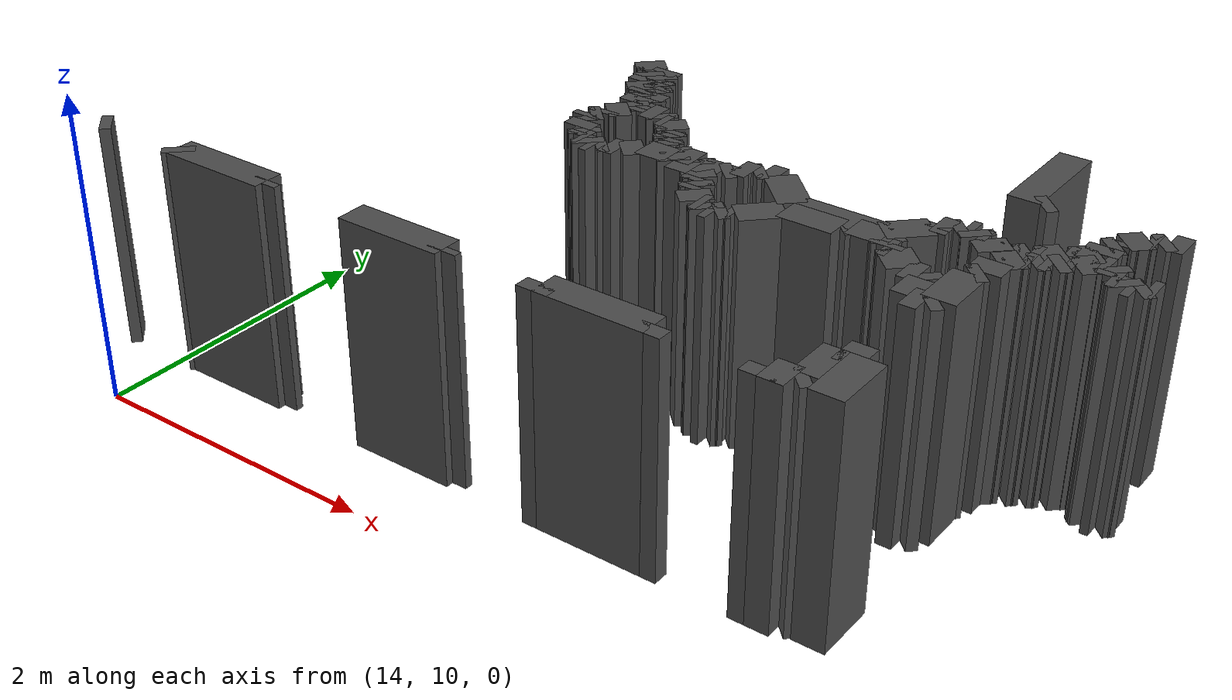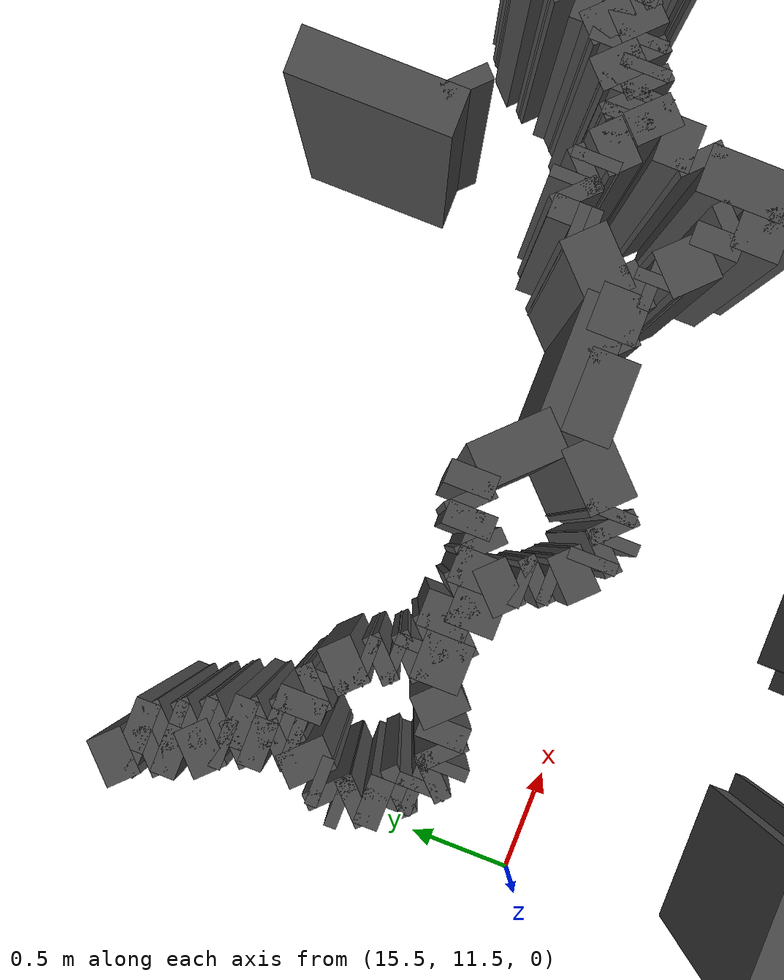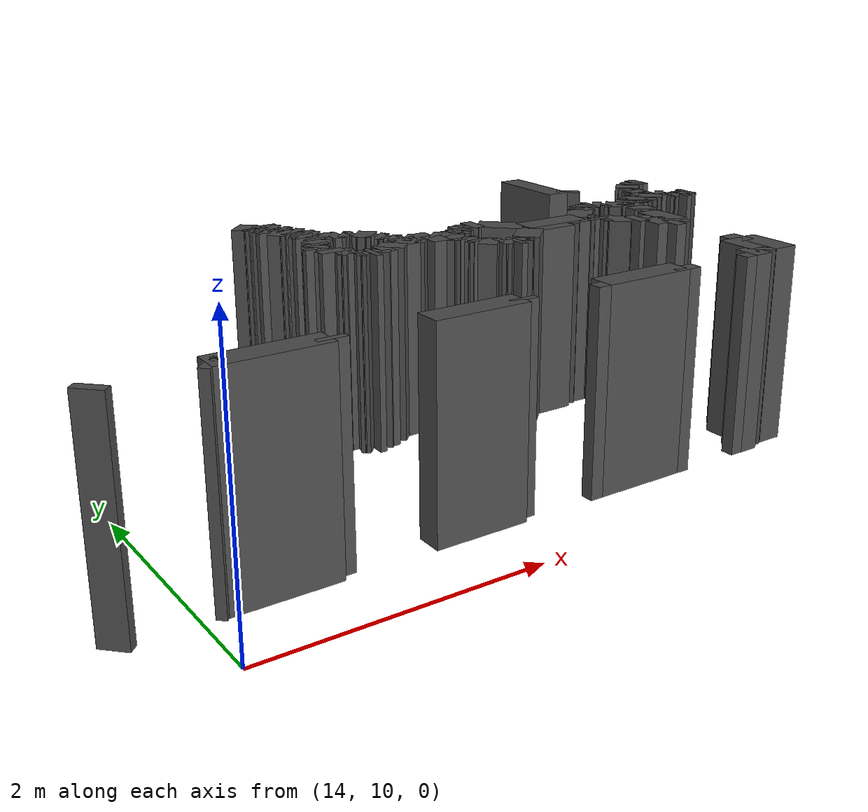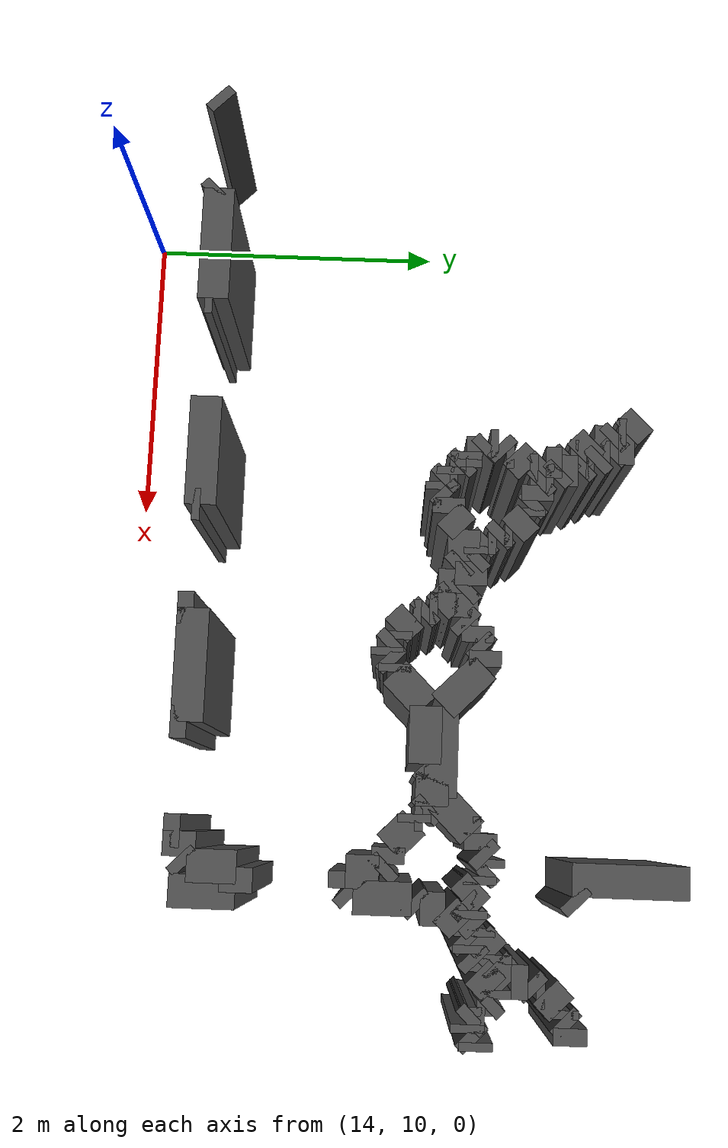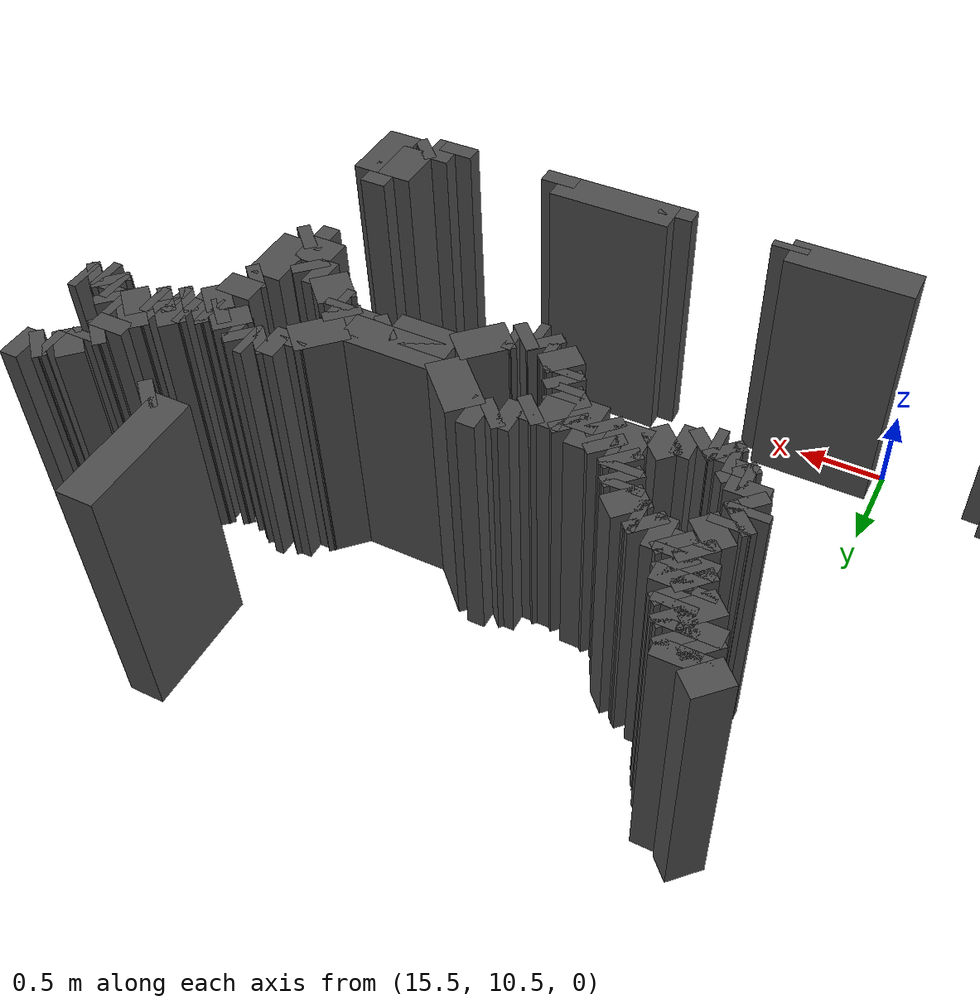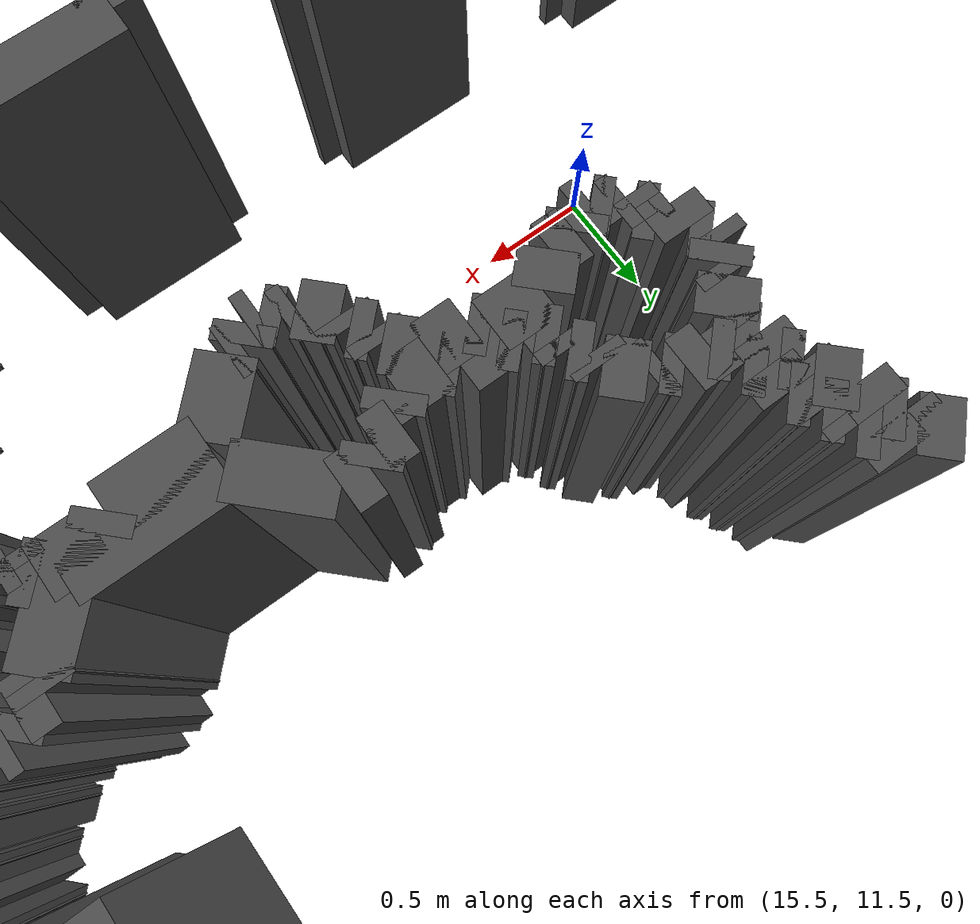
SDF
<sdf version="1.9">
 <model name="generated_walls">
  <static>true</static>
  <link name="wall_135_0">
   <pose>18.450 13.300 0.75 0 0 1.571</pose>
   <collision name="collision"><geometry><box><size>0.700 0.2 1.5</size></box></geometry></collision>
   <visual name="visual">
    <geometry><box><size>0.700 0.2 1.5</size></box></geometry>
    <material><ambient>0.3 0.3 0.3 1</ambient></material>
   </visual>
  </link>
  <link name="wall_135_3">
   <pose>18.575 12.975 0.75 0 0 -2.356</pose>
   <collision name="collision"><geometry><box><size>0.071 0.2 1.5</size></box></geometry></collision>
   <visual name="visual">
    <geometry><box><size>0.071 0.2 1.5</size></box></geometry>
    <material><ambient>0.3 0.3 0.3 1</ambient></material>
   </visual>
  </link>
  <link name="wall_140_0">
   <pose>18.250 10.550 0.75 0 0 1.571</pose>
   <collision name="collision"><geometry><box><size>0.100 0.2 1.5</size></box></geometry></collision>
   <visual name="visual">
    <geometry><box><size>0.100 0.2 1.5</size></box></geometry>
    <material><ambient>0.3 0.3 0.3 1</ambient></material>
   </visual>
  </link>
  <link name="wall_140_1">
   <pose>18.325 10.600 0.75 0 0 0.000</pose>
   <collision name="collision"><geometry><box><size>0.150 0.2 1.5</size></box></geometry></collision>
   <visual name="visual">
    <geometry><box><size>0.150 0.2 1.5</size></box></geometry>
    <material><ambient>0.3 0.3 0.3 1</ambient></material>
   </visual>
  </link>
  <link name="wall_140_2">
   <pose>18.425 10.625 0.75 0 0 0.785</pose>
   <collision name="collision"><geometry><box><size>0.071 0.2 1.5</size></box></geometry></collision>
   <visual name="visual">
    <geometry><box><size>0.071 0.2 1.5</size></box></geometry>
    <material><ambient>0.3 0.3 0.3 1</ambient></material>
   </visual>
  </link>
  <link name="wall_140_3">
   <pose>18.450 10.800 0.75 0 0 1.571</pose>
   <collision name="collision"><geometry><box><size>0.300 0.2 1.5</size></box></geometry></collision>
   <visual name="visual">
    <geometry><box><size>0.300 0.2 1.5</size></box></geometry>
    <material><ambient>0.3 0.3 0.3 1</ambient></material>
   </visual>
  </link>
  <link name="wall_140_4">
   <pose>18.525 10.950 0.75 0 0 0.000</pose>
   <collision name="collision"><geometry><box><size>0.150 0.2 1.5</size></box></geometry></collision>
   <visual name="visual">
    <geometry><box><size>0.150 0.2 1.5</size></box></geometry>
    <material><ambient>0.3 0.3 0.3 1</ambient></material>
   </visual>
  </link>
  <link name="wall_140_5">
   <pose>18.600 10.750 0.75 0 0 -1.571</pose>
   <collision name="collision"><geometry><box><size>0.400 0.2 1.5</size></box></geometry></collision>
   <visual name="visual">
    <geometry><box><size>0.400 0.2 1.5</size></box></geometry>
    <material><ambient>0.3 0.3 0.3 1</ambient></material>
   </visual>
  </link>
  <link name="wall_141_0">
   <pose>16.900 10.550 0.75 0 0 1.571</pose>
   <collision name="collision"><geometry><box><size>0.100 0.2 1.5</size></box></geometry></collision>
   <visual name="visual">
    <geometry><box><size>0.100 0.2 1.5</size></box></geometry>
    <material><ambient>0.3 0.3 0.3 1</ambient></material>
   </visual>
  </link>
  <link name="wall_141_1">
   <pose>17.250 10.600 0.75 0 0 0.000</pose>
   <collision name="collision"><geometry><box><size>0.700 0.2 1.5</size></box></geometry></collision>
   <visual name="visual">
    <geometry><box><size>0.700 0.2 1.5</size></box></geometry>
    <material><ambient>0.3 0.3 0.3 1</ambient></material>
   </visual>
  </link>
  <link name="wall_141_2">
   <pose>17.600 10.550 0.75 0 0 -1.571</pose>
   <collision name="collision"><geometry><box><size>0.100 0.2 1.5</size></box></geometry></collision>
   <visual name="visual">
    <geometry><box><size>0.100 0.2 1.5</size></box></geometry>
    <material><ambient>0.3 0.3 0.3 1</ambient></material>
   </visual>
  </link>
  <link name="wall_142_1">
   <pose>15.900 10.600 0.75 0 0 0.000</pose>
   <collision name="collision"><geometry><box><size>0.700 0.2 1.5</size></box></geometry></collision>
   <visual name="visual">
    <geometry><box><size>0.700 0.2 1.5</size></box></geometry>
    <material><ambient>0.3 0.3 0.3 1</ambient></material>
   </visual>
  </link>
  <link name="wall_142_2">
   <pose>16.250 10.575 0.75 0 0 -1.571</pose>
   <collision name="collision"><geometry><box><size>0.050 0.2 1.5</size></box></geometry></collision>
   <visual name="visual">
    <geometry><box><size>0.050 0.2 1.5</size></box></geometry>
    <material><ambient>0.3 0.3 0.3 1</ambient></material>
   </visual>
  </link>
  <link name="wall_143_1">
   <pose>14.175 10.575 0.75 0 0 2.356</pose>
   <collision name="collision"><geometry><box><size>0.071 0.2 1.5</size></box></geometry></collision>
   <visual name="visual">
    <geometry><box><size>0.071 0.2 1.5</size></box></geometry>
    <material><ambient>0.3 0.3 0.3 1</ambient></material>
   </visual>
  </link>
  <link name="wall_143_2">
   <pose>14.525 10.600 0.75 0 0 0.000</pose>
   <collision name="collision"><geometry><box><size>0.750 0.2 1.5</size></box></geometry></collision>
   <visual name="visual">
    <geometry><box><size>0.750 0.2 1.5</size></box></geometry>
    <material><ambient>0.3 0.3 0.3 1</ambient></material>
   </visual>
  </link>
  <link name="wall_143_3">
   <pose>14.900 10.575 0.75 0 0 -1.571</pose>
   <collision name="collision"><geometry><box><size>0.050 0.2 1.5</size></box></geometry></collision>
   <visual name="visual">
    <geometry><box><size>0.050 0.2 1.5</size></box></geometry>
    <material><ambient>0.3 0.3 0.3 1</ambient></material>
   </visual>
  </link>
  <link name="wall_144_6">
   <pose>13.525 10.575 0.75 0 0 -2.356</pose>
   <collision name="collision"><geometry><box><size>0.071 0.2 1.5</size></box></geometry></collision>
   <visual name="visual">
    <geometry><box><size>0.071 0.2 1.5</size></box></geometry>
    <material><ambient>0.3 0.3 0.3 1</ambient></material>
   </visual>
  </link>
  <link name="wall_161_1636">
   <pose>19.425 12.400 0.75 0 0 3.142</pose>
   <collision name="collision"><geometry><box><size>0.050 0.2 1.5</size></box></geometry></collision>
   <visual name="visual">
    <geometry><box><size>0.050 0.2 1.5</size></box></geometry>
    <material><ambient>0.3 0.3 0.3 1</ambient></material>
   </visual>
  </link>
  <link name="wall_161_1637">
   <pose>19.375 12.375 0.75 0 0 -2.356</pose>
   <collision name="collision"><geometry><box><size>0.071 0.2 1.5</size></box></geometry></collision>
   <visual name="visual">
    <geometry><box><size>0.071 0.2 1.5</size></box></geometry>
    <material><ambient>0.3 0.3 0.3 1</ambient></material>
   </visual>
  </link>
  <link name="wall_161_1638">
   <pose>19.325 12.350 0.75 0 0 3.142</pose>
   <collision name="collision"><geometry><box><size>0.050 0.2 1.5</size></box></geometry></collision>
   <visual name="visual">
    <geometry><box><size>0.050 0.2 1.5</size></box></geometry>
    <material><ambient>0.3 0.3 0.3 1</ambient></material>
   </visual>
  </link>
  <link name="wall_161_1639">
   <pose>19.275 12.375 0.75 0 0 2.356</pose>
   <collision name="collision"><geometry><box><size>0.071 0.2 1.5</size></box></geometry></collision>
   <visual name="visual">
    <geometry><box><size>0.071 0.2 1.5</size></box></geometry>
    <material><ambient>0.3 0.3 0.3 1</ambient></material>
   </visual>
  </link>
  <link name="wall_161_1640">
   <pose>19.225 12.400 0.75 0 0 3.142</pose>
   <collision name="collision"><geometry><box><size>0.050 0.2 1.5</size></box></geometry></collision>
   <visual name="visual">
    <geometry><box><size>0.050 0.2 1.5</size></box></geometry>
    <material><ambient>0.3 0.3 0.3 1</ambient></material>
   </visual>
  </link>
  <link name="wall_161_1641">
   <pose>19.200 12.425 0.75 0 0 1.571</pose>
   <collision name="collision"><geometry><box><size>0.050 0.2 1.5</size></box></geometry></collision>
   <visual name="visual">
    <geometry><box><size>0.050 0.2 1.5</size></box></geometry>
    <material><ambient>0.3 0.3 0.3 1</ambient></material>
   </visual>
  </link>
  <link name="wall_161_1642">
   <pose>19.175 12.475 0.75 0 0 2.356</pose>
   <collision name="collision"><geometry><box><size>0.071 0.2 1.5</size></box></geometry></collision>
   <visual name="visual">
    <geometry><box><size>0.071 0.2 1.5</size></box></geometry>
    <material><ambient>0.3 0.3 0.3 1</ambient></material>
   </visual>
  </link>
  <link name="wall_161_1643">
   <pose>19.125 12.500 0.75 0 0 3.142</pose>
   <collision name="collision"><geometry><box><size>0.050 0.2 1.5</size></box></geometry></collision>
   <visual name="visual">
    <geometry><box><size>0.050 0.2 1.5</size></box></geometry>
    <material><ambient>0.3 0.3 0.3 1</ambient></material>
   </visual>
  </link>
  <link name="wall_161_1644">
   <pose>19.050 12.450 0.75 0 0 -2.356</pose>
   <collision name="collision"><geometry><box><size>0.141 0.2 1.5</size></box></geometry></collision>
   <visual name="visual">
    <geometry><box><size>0.141 0.2 1.5</size></box></geometry>
    <material><ambient>0.3 0.3 0.3 1</ambient></material>
   </visual>
  </link>
  <link name="wall_161_1645">
   <pose>18.975 12.400 0.75 0 0 3.142</pose>
   <collision name="collision"><geometry><box><size>0.050 0.2 1.5</size></box></geometry></collision>
   <visual name="visual">
    <geometry><box><size>0.050 0.2 1.5</size></box></geometry>
    <material><ambient>0.3 0.3 0.3 1</ambient></material>
   </visual>
  </link>
  <link name="wall_161_1646">
   <pose>18.925 12.375 0.75 0 0 -2.356</pose>
   <collision name="collision"><geometry><box><size>0.071 0.2 1.5</size></box></geometry></collision>
   <visual name="visual">
    <geometry><box><size>0.071 0.2 1.5</size></box></geometry>
    <material><ambient>0.3 0.3 0.3 1</ambient></material>
   </visual>
  </link>
  <link name="wall_161_1647">
   <pose>18.875 12.350 0.75 0 0 3.142</pose>
   <collision name="collision"><geometry><box><size>0.050 0.2 1.5</size></box></geometry></collision>
   <visual name="visual">
    <geometry><box><size>0.050 0.2 1.5</size></box></geometry>
    <material><ambient>0.3 0.3 0.3 1</ambient></material>
   </visual>
  </link>
  <link name="wall_161_1648">
   <pose>18.825 12.325 0.75 0 0 -2.356</pose>
   <collision name="collision"><geometry><box><size>0.071 0.2 1.5</size></box></geometry></collision>
   <visual name="visual">
    <geometry><box><size>0.071 0.2 1.5</size></box></geometry>
    <material><ambient>0.3 0.3 0.3 1</ambient></material>
   </visual>
  </link>
  <link name="wall_161_1649">
   <pose>18.775 12.300 0.75 0 0 3.142</pose>
   <collision name="collision"><geometry><box><size>0.050 0.2 1.5</size></box></geometry></collision>
   <visual name="visual">
    <geometry><box><size>0.050 0.2 1.5</size></box></geometry>
    <material><ambient>0.3 0.3 0.3 1</ambient></material>
   </visual>
  </link>
  <link name="wall_161_1650">
   <pose>18.700 12.250 0.75 0 0 -2.356</pose>
   <collision name="collision"><geometry><box><size>0.141 0.2 1.5</size></box></geometry></collision>
   <visual name="visual">
    <geometry><box><size>0.141 0.2 1.5</size></box></geometry>
    <material><ambient>0.3 0.3 0.3 1</ambient></material>
   </visual>
  </link>
  <link name="wall_161_1651">
   <pose>18.650 12.125 0.75 0 0 -1.571</pose>
   <collision name="collision"><geometry><box><size>0.150 0.2 1.5</size></box></geometry></collision>
   <visual name="visual">
    <geometry><box><size>0.150 0.2 1.5</size></box></geometry>
    <material><ambient>0.3 0.3 0.3 1</ambient></material>
   </visual>
  </link>
  <link name="wall_161_1652">
   <pose>18.625 12.025 0.75 0 0 -2.356</pose>
   <collision name="collision"><geometry><box><size>0.071 0.2 1.5</size></box></geometry></collision>
   <visual name="visual">
    <geometry><box><size>0.071 0.2 1.5</size></box></geometry>
    <material><ambient>0.3 0.3 0.3 1</ambient></material>
   </visual>
  </link>
  <link name="wall_161_1653">
   <pose>18.600 11.825 0.75 0 0 -1.571</pose>
   <collision name="collision"><geometry><box><size>0.350 0.2 1.5</size></box></geometry></collision>
   <visual name="visual">
    <geometry><box><size>0.350 0.2 1.5</size></box></geometry>
    <material><ambient>0.3 0.3 0.3 1</ambient></material>
   </visual>
  </link>
  <link name="wall_161_1654">
   <pose>18.575 11.625 0.75 0 0 -2.356</pose>
   <collision name="collision"><geometry><box><size>0.071 0.2 1.5</size></box></geometry></collision>
   <visual name="visual">
    <geometry><box><size>0.071 0.2 1.5</size></box></geometry>
    <material><ambient>0.3 0.3 0.3 1</ambient></material>
   </visual>
  </link>
  <link name="wall_161_1655">
   <pose>18.500 11.600 0.75 0 0 3.142</pose>
   <collision name="collision"><geometry><box><size>0.100 0.2 1.5</size></box></geometry></collision>
   <visual name="visual">
    <geometry><box><size>0.100 0.2 1.5</size></box></geometry>
    <material><ambient>0.3 0.3 0.3 1</ambient></material>
   </visual>
  </link>
  <link name="wall_161_1656">
   <pose>18.450 11.700 0.75 0 0 1.571</pose>
   <collision name="collision"><geometry><box><size>0.200 0.2 1.5</size></box></geometry></collision>
   <visual name="visual">
    <geometry><box><size>0.200 0.2 1.5</size></box></geometry>
    <material><ambient>0.3 0.3 0.3 1</ambient></material>
   </visual>
  </link>
  <link name="wall_161_1657">
   <pose>18.425 11.825 0.75 0 0 2.356</pose>
   <collision name="collision"><geometry><box><size>0.071 0.2 1.5</size></box></geometry></collision>
   <visual name="visual">
    <geometry><box><size>0.071 0.2 1.5</size></box></geometry>
    <material><ambient>0.3 0.3 0.3 1</ambient></material>
   </visual>
  </link>
  <link name="wall_161_1658">
   <pose>18.350 11.850 0.75 0 0 3.142</pose>
   <collision name="collision"><geometry><box><size>0.100 0.2 1.5</size></box></geometry></collision>
   <visual name="visual">
    <geometry><box><size>0.100 0.2 1.5</size></box></geometry>
    <material><ambient>0.3 0.3 0.3 1</ambient></material>
   </visual>
  </link>
  <link name="wall_161_1659">
   <pose>18.225 11.925 0.75 0 0 2.356</pose>
   <collision name="collision"><geometry><box><size>0.212 0.2 1.5</size></box></geometry></collision>
   <visual name="visual">
    <geometry><box><size>0.212 0.2 1.5</size></box></geometry>
    <material><ambient>0.3 0.3 0.3 1</ambient></material>
   </visual>
  </link>
  <link name="wall_161_1660">
   <pose>18.125 12.000 0.75 0 0 3.142</pose>
   <collision name="collision"><geometry><box><size>0.050 0.2 1.5</size></box></geometry></collision>
   <visual name="visual">
    <geometry><box><size>0.050 0.2 1.5</size></box></geometry>
    <material><ambient>0.3 0.3 0.3 1</ambient></material>
   </visual>
  </link>
  <link name="wall_161_1661">
   <pose>18.100 12.025 0.75 0 0 1.571</pose>
   <collision name="collision"><geometry><box><size>0.050 0.2 1.5</size></box></geometry></collision>
   <visual name="visual">
    <geometry><box><size>0.050 0.2 1.5</size></box></geometry>
    <material><ambient>0.3 0.3 0.3 1</ambient></material>
   </visual>
  </link>
  <link name="wall_161_1662">
   <pose>18.075 12.075 0.75 0 0 2.356</pose>
   <collision name="collision"><geometry><box><size>0.071 0.2 1.5</size></box></geometry></collision>
   <visual name="visual">
    <geometry><box><size>0.071 0.2 1.5</size></box></geometry>
    <material><ambient>0.3 0.3 0.3 1</ambient></material>
   </visual>
  </link>
  <link name="wall_161_1663">
   <pose>17.950 12.100 0.75 0 0 3.142</pose>
   <collision name="collision"><geometry><box><size>0.200 0.2 1.5</size></box></geometry></collision>
   <visual name="visual">
    <geometry><box><size>0.200 0.2 1.5</size></box></geometry>
    <material><ambient>0.3 0.3 0.3 1</ambient></material>
   </visual>
  </link>
  <link name="wall_161_1664">
   <pose>17.825 12.075 0.75 0 0 -2.356</pose>
   <collision name="collision"><geometry><box><size>0.071 0.2 1.5</size></box></geometry></collision>
   <visual name="visual">
    <geometry><box><size>0.071 0.2 1.5</size></box></geometry>
    <material><ambient>0.3 0.3 0.3 1</ambient></material>
   </visual>
  </link>
  <link name="wall_161_1665">
   <pose>17.625 12.050 0.75 0 0 3.142</pose>
   <collision name="collision"><geometry><box><size>0.350 0.2 1.5</size></box></geometry></collision>
   <visual name="visual">
    <geometry><box><size>0.350 0.2 1.5</size></box></geometry>
    <material><ambient>0.3 0.3 0.3 1</ambient></material>
   </visual>
  </link>
  <link name="wall_161_1666">
   <pose>17.350 11.950 0.75 0 0 -2.356</pose>
   <collision name="collision"><geometry><box><size>0.283 0.2 1.5</size></box></geometry></collision>
   <visual name="visual">
    <geometry><box><size>0.283 0.2 1.5</size></box></geometry>
    <material><ambient>0.3 0.3 0.3 1</ambient></material>
   </visual>
  </link>
  <link name="wall_161_1667">
   <pose>17.225 11.850 0.75 0 0 3.142</pose>
   <collision name="collision"><geometry><box><size>0.050 0.2 1.5</size></box></geometry></collision>
   <visual name="visual">
    <geometry><box><size>0.050 0.2 1.5</size></box></geometry>
    <material><ambient>0.3 0.3 0.3 1</ambient></material>
   </visual>
  </link>
  <link name="wall_161_1668">
   <pose>17.175 11.825 0.75 0 0 -2.356</pose>
   <collision name="collision"><geometry><box><size>0.071 0.2 1.5</size></box></geometry></collision>
   <visual name="visual">
    <geometry><box><size>0.071 0.2 1.5</size></box></geometry>
    <material><ambient>0.3 0.3 0.3 1</ambient></material>
   </visual>
  </link>
  <link name="wall_161_1669">
   <pose>17.125 11.800 0.75 0 0 3.142</pose>
   <collision name="collision"><geometry><box><size>0.050 0.2 1.5</size></box></geometry></collision>
   <visual name="visual">
    <geometry><box><size>0.050 0.2 1.5</size></box></geometry>
    <material><ambient>0.3 0.3 0.3 1</ambient></material>
   </visual>
  </link>
  <link name="wall_161_1670">
   <pose>17.075 11.825 0.75 0 0 2.356</pose>
   <collision name="collision"><geometry><box><size>0.071 0.2 1.5</size></box></geometry></collision>
   <visual name="visual">
    <geometry><box><size>0.071 0.2 1.5</size></box></geometry>
    <material><ambient>0.3 0.3 0.3 1</ambient></material>
   </visual>
  </link>
  <link name="wall_161_1671">
   <pose>17.025 11.850 0.75 0 0 3.142</pose>
   <collision name="collision"><geometry><box><size>0.050 0.2 1.5</size></box></geometry></collision>
   <visual name="visual">
    <geometry><box><size>0.050 0.2 1.5</size></box></geometry>
    <material><ambient>0.3 0.3 0.3 1</ambient></material>
   </visual>
  </link>
  <link name="wall_161_1672">
   <pose>16.950 11.900 0.75 0 0 2.356</pose>
   <collision name="collision"><geometry><box><size>0.141 0.2 1.5</size></box></geometry></collision>
   <visual name="visual">
    <geometry><box><size>0.141 0.2 1.5</size></box></geometry>
    <material><ambient>0.3 0.3 0.3 1</ambient></material>
   </visual>
  </link>
  <link name="wall_161_1673">
   <pose>16.900 11.975 0.75 0 0 1.571</pose>
   <collision name="collision"><geometry><box><size>0.050 0.2 1.5</size></box></geometry></collision>
   <visual name="visual">
    <geometry><box><size>0.050 0.2 1.5</size></box></geometry>
    <material><ambient>0.3 0.3 0.3 1</ambient></material>
   </visual>
  </link>
  <link name="wall_161_1674">
   <pose>16.875 12.025 0.75 0 0 2.356</pose>
   <collision name="collision"><geometry><box><size>0.071 0.2 1.5</size></box></geometry></collision>
   <visual name="visual">
    <geometry><box><size>0.071 0.2 1.5</size></box></geometry>
    <material><ambient>0.3 0.3 0.3 1</ambient></material>
   </visual>
  </link>
  <link name="wall_161_1675">
   <pose>16.850 12.075 0.75 0 0 1.571</pose>
   <collision name="collision"><geometry><box><size>0.050 0.2 1.5</size></box></geometry></collision>
   <visual name="visual">
    <geometry><box><size>0.050 0.2 1.5</size></box></geometry>
    <material><ambient>0.3 0.3 0.3 1</ambient></material>
   </visual>
  </link>
  <link name="wall_161_1676">
   <pose>16.800 12.150 0.75 0 0 2.356</pose>
   <collision name="collision"><geometry><box><size>0.141 0.2 1.5</size></box></geometry></collision>
   <visual name="visual">
    <geometry><box><size>0.141 0.2 1.5</size></box></geometry>
    <material><ambient>0.3 0.3 0.3 1</ambient></material>
   </visual>
  </link>
  <link name="wall_161_1677">
   <pose>16.675 12.200 0.75 0 0 3.142</pose>
   <collision name="collision"><geometry><box><size>0.150 0.2 1.5</size></box></geometry></collision>
   <visual name="visual">
    <geometry><box><size>0.150 0.2 1.5</size></box></geometry>
    <material><ambient>0.3 0.3 0.3 1</ambient></material>
   </visual>
  </link>
  <link name="wall_161_1678">
   <pose>16.575 12.225 0.75 0 0 2.356</pose>
   <collision name="collision"><geometry><box><size>0.071 0.2 1.5</size></box></geometry></collision>
   <visual name="visual">
    <geometry><box><size>0.071 0.2 1.5</size></box></geometry>
    <material><ambient>0.3 0.3 0.3 1</ambient></material>
   </visual>
  </link>
  <link name="wall_161_1679">
   <pose>16.450 12.250 0.75 0 0 3.142</pose>
   <collision name="collision"><geometry><box><size>0.200 0.2 1.5</size></box></geometry></collision>
   <visual name="visual">
    <geometry><box><size>0.200 0.2 1.5</size></box></geometry>
    <material><ambient>0.3 0.3 0.3 1</ambient></material>
   </visual>
  </link>
  <link name="wall_161_1680">
   <pose>16.300 12.200 0.75 0 0 -2.356</pose>
   <collision name="collision"><geometry><box><size>0.141 0.2 1.5</size></box></geometry></collision>
   <visual name="visual">
    <geometry><box><size>0.141 0.2 1.5</size></box></geometry>
    <material><ambient>0.3 0.3 0.3 1</ambient></material>
   </visual>
  </link>
  <link name="wall_161_1681">
   <pose>16.200 12.150 0.75 0 0 3.142</pose>
   <collision name="collision"><geometry><box><size>0.100 0.2 1.5</size></box></geometry></collision>
   <visual name="visual">
    <geometry><box><size>0.100 0.2 1.5</size></box></geometry>
    <material><ambient>0.3 0.3 0.3 1</ambient></material>
   </visual>
  </link>
  <link name="wall_161_1682">
   <pose>16.125 12.125 0.75 0 0 -2.356</pose>
   <collision name="collision"><geometry><box><size>0.071 0.2 1.5</size></box></geometry></collision>
   <visual name="visual">
    <geometry><box><size>0.071 0.2 1.5</size></box></geometry>
    <material><ambient>0.3 0.3 0.3 1</ambient></material>
   </visual>
  </link>
  <link name="wall_161_1683">
   <pose>16.075 12.100 0.75 0 0 3.142</pose>
   <collision name="collision"><geometry><box><size>0.050 0.2 1.5</size></box></geometry></collision>
   <visual name="visual">
    <geometry><box><size>0.050 0.2 1.5</size></box></geometry>
    <material><ambient>0.3 0.3 0.3 1</ambient></material>
   </visual>
  </link>
  <link name="wall_161_1684">
   <pose>16.025 12.125 0.75 0 0 2.356</pose>
   <collision name="collision"><geometry><box><size>0.071 0.2 1.5</size></box></geometry></collision>
   <visual name="visual">
    <geometry><box><size>0.071 0.2 1.5</size></box></geometry>
    <material><ambient>0.3 0.3 0.3 1</ambient></material>
   </visual>
  </link>
  <link name="wall_161_1685">
   <pose>15.975 12.150 0.75 0 0 3.142</pose>
   <collision name="collision"><geometry><box><size>0.050 0.2 1.5</size></box></geometry></collision>
   <visual name="visual">
    <geometry><box><size>0.050 0.2 1.5</size></box></geometry>
    <material><ambient>0.3 0.3 0.3 1</ambient></material>
   </visual>
  </link>
  <link name="wall_161_1686">
   <pose>15.950 12.175 0.75 0 0 1.571</pose>
   <collision name="collision"><geometry><box><size>0.050 0.2 1.5</size></box></geometry></collision>
   <visual name="visual">
    <geometry><box><size>0.050 0.2 1.5</size></box></geometry>
    <material><ambient>0.3 0.3 0.3 1</ambient></material>
   </visual>
  </link>
  <link name="wall_161_1687">
   <pose>15.925 12.225 0.75 0 0 2.356</pose>
   <collision name="collision"><geometry><box><size>0.071 0.2 1.5</size></box></geometry></collision>
   <visual name="visual">
    <geometry><box><size>0.071 0.2 1.5</size></box></geometry>
    <material><ambient>0.3 0.3 0.3 1</ambient></material>
   </visual>
  </link>
  <link name="wall_161_1688">
   <pose>15.875 12.250 0.75 0 0 3.142</pose>
   <collision name="collision"><geometry><box><size>0.050 0.2 1.5</size></box></geometry></collision>
   <visual name="visual">
    <geometry><box><size>0.050 0.2 1.5</size></box></geometry>
    <material><ambient>0.3 0.3 0.3 1</ambient></material>
   </visual>
  </link>
  <link name="wall_161_1689">
   <pose>15.850 12.300 0.75 0 0 1.571</pose>
   <collision name="collision"><geometry><box><size>0.100 0.2 1.5</size></box></geometry></collision>
   <visual name="visual">
    <geometry><box><size>0.100 0.2 1.5</size></box></geometry>
    <material><ambient>0.3 0.3 0.3 1</ambient></material>
   </visual>
  </link>
  <link name="wall_161_1690">
   <pose>15.825 12.375 0.75 0 0 2.356</pose>
   <collision name="collision"><geometry><box><size>0.071 0.2 1.5</size></box></geometry></collision>
   <visual name="visual">
    <geometry><box><size>0.071 0.2 1.5</size></box></geometry>
    <material><ambient>0.3 0.3 0.3 1</ambient></material>
   </visual>
  </link>
  <link name="wall_161_1691">
   <pose>15.800 12.425 0.75 0 0 1.571</pose>
   <collision name="collision"><geometry><box><size>0.050 0.2 1.5</size></box></geometry></collision>
   <visual name="visual">
    <geometry><box><size>0.050 0.2 1.5</size></box></geometry>
    <material><ambient>0.3 0.3 0.3 1</ambient></material>
   </visual>
  </link>
  <link name="wall_161_1692">
   <pose>15.825 12.475 0.75 0 0 0.785</pose>
   <collision name="collision"><geometry><box><size>0.071 0.2 1.5</size></box></geometry></collision>
   <visual name="visual">
    <geometry><box><size>0.071 0.2 1.5</size></box></geometry>
    <material><ambient>0.3 0.3 0.3 1</ambient></material>
   </visual>
  </link>
  <link name="wall_161_1693">
   <pose>15.850 12.525 0.75 0 0 1.571</pose>
   <collision name="collision"><geometry><box><size>0.050 0.2 1.5</size></box></geometry></collision>
   <visual name="visual">
    <geometry><box><size>0.050 0.2 1.5</size></box></geometry>
    <material><ambient>0.3 0.3 0.3 1</ambient></material>
   </visual>
  </link>
  <link name="wall_161_1694">
   <pose>15.900 12.600 0.75 0 0 0.785</pose>
   <collision name="collision"><geometry><box><size>0.141 0.2 1.5</size></box></geometry></collision>
   <visual name="visual">
    <geometry><box><size>0.141 0.2 1.5</size></box></geometry>
    <material><ambient>0.3 0.3 0.3 1</ambient></material>
   </visual>
  </link>
  <link name="wall_161_1695">
   <pose>15.950 12.675 0.75 0 0 1.571</pose>
   <collision name="collision"><geometry><box><size>0.050 0.2 1.5</size></box></geometry></collision>
   <visual name="visual">
    <geometry><box><size>0.050 0.2 1.5</size></box></geometry>
    <material><ambient>0.3 0.3 0.3 1</ambient></material>
   </visual>
  </link>
  <link name="wall_161_1696">
   <pose>15.925 12.725 0.75 0 0 2.356</pose>
   <collision name="collision"><geometry><box><size>0.071 0.2 1.5</size></box></geometry></collision>
   <visual name="visual">
    <geometry><box><size>0.071 0.2 1.5</size></box></geometry>
    <material><ambient>0.3 0.3 0.3 1</ambient></material>
   </visual>
  </link>
  <link name="wall_161_1697">
   <pose>15.900 12.800 0.75 0 0 1.571</pose>
   <collision name="collision"><geometry><box><size>0.100 0.2 1.5</size></box></geometry></collision>
   <visual name="visual">
    <geometry><box><size>0.100 0.2 1.5</size></box></geometry>
    <material><ambient>0.3 0.3 0.3 1</ambient></material>
   </visual>
  </link>
  <link name="wall_161_1698">
   <pose>15.875 12.875 0.75 0 0 2.356</pose>
   <collision name="collision"><geometry><box><size>0.071 0.2 1.5</size></box></geometry></collision>
   <visual name="visual">
    <geometry><box><size>0.071 0.2 1.5</size></box></geometry>
    <material><ambient>0.3 0.3 0.3 1</ambient></material>
   </visual>
  </link>
  <link name="wall_161_1699">
   <pose>15.850 12.925 0.75 0 0 1.571</pose>
   <collision name="collision"><geometry><box><size>0.050 0.2 1.5</size></box></geometry></collision>
   <visual name="visual">
    <geometry><box><size>0.050 0.2 1.5</size></box></geometry>
    <material><ambient>0.3 0.3 0.3 1</ambient></material>
   </visual>
  </link>
  <link name="wall_161_1700">
   <pose>15.800 13.000 0.75 0 0 2.356</pose>
   <collision name="collision"><geometry><box><size>0.141 0.2 1.5</size></box></geometry></collision>
   <visual name="visual">
    <geometry><box><size>0.141 0.2 1.5</size></box></geometry>
    <material><ambient>0.3 0.3 0.3 1</ambient></material>
   </visual>
  </link>
  <link name="wall_161_1701">
   <pose>15.750 13.100 0.75 0 0 1.571</pose>
   <collision name="collision"><geometry><box><size>0.100 0.2 1.5</size></box></geometry></collision>
   <visual name="visual">
    <geometry><box><size>0.100 0.2 1.5</size></box></geometry>
    <material><ambient>0.3 0.3 0.3 1</ambient></material>
   </visual>
  </link>
  <link name="wall_161_1702">
   <pose>15.725 13.175 0.75 0 0 2.356</pose>
   <collision name="collision"><geometry><box><size>0.071 0.2 1.5</size></box></geometry></collision>
   <visual name="visual">
    <geometry><box><size>0.071 0.2 1.5</size></box></geometry>
    <material><ambient>0.3 0.3 0.3 1</ambient></material>
   </visual>
  </link>
  <link name="wall_161_1703">
   <pose>15.700 13.225 0.75 0 0 1.571</pose>
   <collision name="collision"><geometry><box><size>0.050 0.2 1.5</size></box></geometry></collision>
   <visual name="visual">
    <geometry><box><size>0.050 0.2 1.5</size></box></geometry>
    <material><ambient>0.3 0.3 0.3 1</ambient></material>
   </visual>
  </link>
  <link name="wall_161_1704">
   <pose>15.650 13.300 0.75 0 0 2.356</pose>
   <collision name="collision"><geometry><box><size>0.141 0.2 1.5</size></box></geometry></collision>
   <visual name="visual">
    <geometry><box><size>0.141 0.2 1.5</size></box></geometry>
    <material><ambient>0.3 0.3 0.3 1</ambient></material>
   </visual>
  </link>
  <link name="wall_161_2460">
   <pose>15.800 13.250 0.75 0 0 -1.571</pose>
   <collision name="collision"><geometry><box><size>0.100 0.2 1.5</size></box></geometry></collision>
   <visual name="visual">
    <geometry><box><size>0.100 0.2 1.5</size></box></geometry>
    <material><ambient>0.3 0.3 0.3 1</ambient></material>
   </visual>
  </link>
  <link name="wall_161_2461">
   <pose>15.825 13.175 0.75 0 0 -0.785</pose>
   <collision name="collision"><geometry><box><size>0.071 0.2 1.5</size></box></geometry></collision>
   <visual name="visual">
    <geometry><box><size>0.071 0.2 1.5</size></box></geometry>
    <material><ambient>0.3 0.3 0.3 1</ambient></material>
   </visual>
  </link>
  <link name="wall_161_2462">
   <pose>15.850 13.125 0.75 0 0 -1.571</pose>
   <collision name="collision"><geometry><box><size>0.050 0.2 1.5</size></box></geometry></collision>
   <visual name="visual">
    <geometry><box><size>0.050 0.2 1.5</size></box></geometry>
    <material><ambient>0.3 0.3 0.3 1</ambient></material>
   </visual>
  </link>
  <link name="wall_161_2463">
   <pose>15.875 13.075 0.75 0 0 -0.785</pose>
   <collision name="collision"><geometry><box><size>0.071 0.2 1.5</size></box></geometry></collision>
   <visual name="visual">
    <geometry><box><size>0.071 0.2 1.5</size></box></geometry>
    <material><ambient>0.3 0.3 0.3 1</ambient></material>
   </visual>
  </link>
  <link name="wall_161_2464">
   <pose>15.900 13.025 0.75 0 0 -1.571</pose>
   <collision name="collision"><geometry><box><size>0.050 0.2 1.5</size></box></geometry></collision>
   <visual name="visual">
    <geometry><box><size>0.050 0.2 1.5</size></box></geometry>
    <material><ambient>0.3 0.3 0.3 1</ambient></material>
   </visual>
  </link>
  <link name="wall_161_2465">
   <pose>15.925 12.975 0.75 0 0 -0.785</pose>
   <collision name="collision"><geometry><box><size>0.071 0.2 1.5</size></box></geometry></collision>
   <visual name="visual">
    <geometry><box><size>0.071 0.2 1.5</size></box></geometry>
    <material><ambient>0.3 0.3 0.3 1</ambient></material>
   </visual>
  </link>
  <link name="wall_161_2466">
   <pose>15.950 12.900 0.75 0 0 -1.571</pose>
   <collision name="collision"><geometry><box><size>0.100 0.2 1.5</size></box></geometry></collision>
   <visual name="visual">
    <geometry><box><size>0.100 0.2 1.5</size></box></geometry>
    <material><ambient>0.3 0.3 0.3 1</ambient></material>
   </visual>
  </link>
  <link name="wall_161_2467">
   <pose>15.975 12.825 0.75 0 0 -0.785</pose>
   <collision name="collision"><geometry><box><size>0.071 0.2 1.5</size></box></geometry></collision>
   <visual name="visual">
    <geometry><box><size>0.071 0.2 1.5</size></box></geometry>
    <material><ambient>0.3 0.3 0.3 1</ambient></material>
   </visual>
  </link>
  <link name="wall_161_2468">
   <pose>16.000 12.775 0.75 0 0 -1.571</pose>
   <collision name="collision"><geometry><box><size>0.050 0.2 1.5</size></box></geometry></collision>
   <visual name="visual">
    <geometry><box><size>0.050 0.2 1.5</size></box></geometry>
    <material><ambient>0.3 0.3 0.3 1</ambient></material>
   </visual>
  </link>
  <link name="wall_161_2469">
   <pose>16.025 12.725 0.75 0 0 -0.785</pose>
   <collision name="collision"><geometry><box><size>0.071 0.2 1.5</size></box></geometry></collision>
   <visual name="visual">
    <geometry><box><size>0.071 0.2 1.5</size></box></geometry>
    <material><ambient>0.3 0.3 0.3 1</ambient></material>
   </visual>
  </link>
  <link name="wall_161_2470">
   <pose>16.100 12.700 0.75 0 0 0.000</pose>
   <collision name="collision"><geometry><box><size>0.100 0.2 1.5</size></box></geometry></collision>
   <visual name="visual">
    <geometry><box><size>0.100 0.2 1.5</size></box></geometry>
    <material><ambient>0.3 0.3 0.3 1</ambient></material>
   </visual>
  </link>
  <link name="wall_161_2471">
   <pose>16.175 12.675 0.75 0 0 -0.785</pose>
   <collision name="collision"><geometry><box><size>0.071 0.2 1.5</size></box></geometry></collision>
   <visual name="visual">
    <geometry><box><size>0.071 0.2 1.5</size></box></geometry>
    <material><ambient>0.3 0.3 0.3 1</ambient></material>
   </visual>
  </link>
  <link name="wall_161_2472">
   <pose>16.225 12.650 0.75 0 0 0.000</pose>
   <collision name="collision"><geometry><box><size>0.050 0.2 1.5</size></box></geometry></collision>
   <visual name="visual">
    <geometry><box><size>0.050 0.2 1.5</size></box></geometry>
    <material><ambient>0.3 0.3 0.3 1</ambient></material>
   </visual>
  </link>
  <link name="wall_161_2473">
   <pose>16.300 12.600 0.75 0 0 -0.785</pose>
   <collision name="collision"><geometry><box><size>0.141 0.2 1.5</size></box></geometry></collision>
   <visual name="visual">
    <geometry><box><size>0.141 0.2 1.5</size></box></geometry>
    <material><ambient>0.3 0.3 0.3 1</ambient></material>
   </visual>
  </link>
  <link name="wall_161_2474">
   <pose>16.350 12.525 0.75 0 0 -1.571</pose>
   <collision name="collision"><geometry><box><size>0.050 0.2 1.5</size></box></geometry></collision>
   <visual name="visual">
    <geometry><box><size>0.050 0.2 1.5</size></box></geometry>
    <material><ambient>0.3 0.3 0.3 1</ambient></material>
   </visual>
  </link>
  <link name="wall_161_2475">
   <pose>16.375 12.475 0.75 0 0 -0.785</pose>
   <collision name="collision"><geometry><box><size>0.071 0.2 1.5</size></box></geometry></collision>
   <visual name="visual">
    <geometry><box><size>0.071 0.2 1.5</size></box></geometry>
    <material><ambient>0.3 0.3 0.3 1</ambient></material>
   </visual>
  </link>
  <link name="wall_161_2476">
   <pose>16.400 12.425 0.75 0 0 -1.571</pose>
   <collision name="collision"><geometry><box><size>0.050 0.2 1.5</size></box></geometry></collision>
   <visual name="visual">
    <geometry><box><size>0.050 0.2 1.5</size></box></geometry>
    <material><ambient>0.3 0.3 0.3 1</ambient></material>
   </visual>
  </link>
  <link name="wall_161_2477">
   <pose>16.425 12.375 0.75 0 0 -0.785</pose>
   <collision name="collision"><geometry><box><size>0.071 0.2 1.5</size></box></geometry></collision>
   <visual name="visual">
    <geometry><box><size>0.071 0.2 1.5</size></box></geometry>
    <material><ambient>0.3 0.3 0.3 1</ambient></material>
   </visual>
  </link>
  <link name="wall_161_2478">
   <pose>16.475 12.350 0.75 0 0 0.000</pose>
   <collision name="collision"><geometry><box><size>0.050 0.2 1.5</size></box></geometry></collision>
   <visual name="visual">
    <geometry><box><size>0.050 0.2 1.5</size></box></geometry>
    <material><ambient>0.3 0.3 0.3 1</ambient></material>
   </visual>
  </link>
  <link name="wall_161_2479">
   <pose>16.525 12.325 0.75 0 0 -0.785</pose>
   <collision name="collision"><geometry><box><size>0.071 0.2 1.5</size></box></geometry></collision>
   <visual name="visual">
    <geometry><box><size>0.071 0.2 1.5</size></box></geometry>
    <material><ambient>0.3 0.3 0.3 1</ambient></material>
   </visual>
  </link>
  <link name="wall_161_2480">
   <pose>16.625 12.300 0.75 0 0 0.000</pose>
   <collision name="collision"><geometry><box><size>0.150 0.2 1.5</size></box></geometry></collision>
   <visual name="visual">
    <geometry><box><size>0.150 0.2 1.5</size></box></geometry>
    <material><ambient>0.3 0.3 0.3 1</ambient></material>
   </visual>
  </link>
  <link name="wall_161_2481">
   <pose>16.725 12.275 0.75 0 0 -0.785</pose>
   <collision name="collision"><geometry><box><size>0.071 0.2 1.5</size></box></geometry></collision>
   <visual name="visual">
    <geometry><box><size>0.071 0.2 1.5</size></box></geometry>
    <material><ambient>0.3 0.3 0.3 1</ambient></material>
   </visual>
  </link>
  <link name="wall_161_2482">
   <pose>16.825 12.250 0.75 0 0 0.000</pose>
   <collision name="collision"><geometry><box><size>0.150 0.2 1.5</size></box></geometry></collision>
   <visual name="visual">
    <geometry><box><size>0.150 0.2 1.5</size></box></geometry>
    <material><ambient>0.3 0.3 0.3 1</ambient></material>
   </visual>
  </link>
  <link name="wall_161_2483">
   <pose>16.925 12.275 0.75 0 0 0.785</pose>
   <collision name="collision"><geometry><box><size>0.071 0.2 1.5</size></box></geometry></collision>
   <visual name="visual">
    <geometry><box><size>0.071 0.2 1.5</size></box></geometry>
    <material><ambient>0.3 0.3 0.3 1</ambient></material>
   </visual>
  </link>
  <link name="wall_161_2484">
   <pose>16.950 12.325 0.75 0 0 1.571</pose>
   <collision name="collision"><geometry><box><size>0.050 0.2 1.5</size></box></geometry></collision>
   <visual name="visual">
    <geometry><box><size>0.050 0.2 1.5</size></box></geometry>
    <material><ambient>0.3 0.3 0.3 1</ambient></material>
   </visual>
  </link>
  <link name="wall_161_2485">
   <pose>17.000 12.350 0.75 0 0 0.000</pose>
   <collision name="collision"><geometry><box><size>0.100 0.2 1.5</size></box></geometry></collision>
   <visual name="visual">
    <geometry><box><size>0.100 0.2 1.5</size></box></geometry>
    <material><ambient>0.3 0.3 0.3 1</ambient></material>
   </visual>
  </link>
  <link name="wall_161_2486">
   <pose>17.075 12.375 0.75 0 0 0.785</pose>
   <collision name="collision"><geometry><box><size>0.071 0.2 1.5</size></box></geometry></collision>
   <visual name="visual">
    <geometry><box><size>0.071 0.2 1.5</size></box></geometry>
    <material><ambient>0.3 0.3 0.3 1</ambient></material>
   </visual>
  </link>
  <link name="wall_161_2487">
   <pose>17.150 12.400 0.75 0 0 0.000</pose>
   <collision name="collision"><geometry><box><size>0.100 0.2 1.5</size></box></geometry></collision>
   <visual name="visual">
    <geometry><box><size>0.100 0.2 1.5</size></box></geometry>
    <material><ambient>0.3 0.3 0.3 1</ambient></material>
   </visual>
  </link>
  <link name="wall_161_2488">
   <pose>17.325 12.275 0.75 0 0 -0.785</pose>
   <collision name="collision"><geometry><box><size>0.354 0.2 1.5</size></box></geometry></collision>
   <visual name="visual">
    <geometry><box><size>0.354 0.2 1.5</size></box></geometry>
    <material><ambient>0.3 0.3 0.3 1</ambient></material>
   </visual>
  </link>
  <link name="wall_161_2489">
   <pose>17.725 12.150 0.75 0 0 0.000</pose>
   <collision name="collision"><geometry><box><size>0.550 0.2 1.5</size></box></geometry></collision>
   <visual name="visual">
    <geometry><box><size>0.550 0.2 1.5</size></box></geometry>
    <material><ambient>0.3 0.3 0.3 1</ambient></material>
   </visual>
  </link>
  <link name="wall_161_2490">
   <pose>18.100 12.250 0.75 0 0 0.785</pose>
   <collision name="collision"><geometry><box><size>0.283 0.2 1.5</size></box></geometry></collision>
   <visual name="visual">
    <geometry><box><size>0.283 0.2 1.5</size></box></geometry>
    <material><ambient>0.3 0.3 0.3 1</ambient></material>
   </visual>
  </link>
  <link name="wall_161_2491">
   <pose>18.200 12.375 0.75 0 0 1.571</pose>
   <collision name="collision"><geometry><box><size>0.050 0.2 1.5</size></box></geometry></collision>
   <visual name="visual">
    <geometry><box><size>0.050 0.2 1.5</size></box></geometry>
    <material><ambient>0.3 0.3 0.3 1</ambient></material>
   </visual>
  </link>
  <link name="wall_161_2492">
   <pose>18.250 12.400 0.75 0 0 0.000</pose>
   <collision name="collision"><geometry><box><size>0.100 0.2 1.5</size></box></geometry></collision>
   <visual name="visual">
    <geometry><box><size>0.100 0.2 1.5</size></box></geometry>
    <material><ambient>0.3 0.3 0.3 1</ambient></material>
   </visual>
  </link>
  <link name="wall_161_2493">
   <pose>18.325 12.425 0.75 0 0 0.785</pose>
   <collision name="collision"><geometry><box><size>0.071 0.2 1.5</size></box></geometry></collision>
   <visual name="visual">
    <geometry><box><size>0.071 0.2 1.5</size></box></geometry>
    <material><ambient>0.3 0.3 0.3 1</ambient></material>
   </visual>
  </link>
  <link name="wall_161_2494">
   <pose>18.375 12.450 0.75 0 0 0.000</pose>
   <collision name="collision"><geometry><box><size>0.050 0.2 1.5</size></box></geometry></collision>
   <visual name="visual">
    <geometry><box><size>0.050 0.2 1.5</size></box></geometry>
    <material><ambient>0.3 0.3 0.3 1</ambient></material>
   </visual>
  </link>
  <link name="wall_161_2495">
   <pose>18.425 12.425 0.75 0 0 -0.785</pose>
   <collision name="collision"><geometry><box><size>0.071 0.2 1.5</size></box></geometry></collision>
   <visual name="visual">
    <geometry><box><size>0.071 0.2 1.5</size></box></geometry>
    <material><ambient>0.3 0.3 0.3 1</ambient></material>
   </visual>
  </link>
  <link name="wall_161_2496">
   <pose>18.475 12.400 0.75 0 0 0.000</pose>
   <collision name="collision"><geometry><box><size>0.050 0.2 1.5</size></box></geometry></collision>
   <visual name="visual">
    <geometry><box><size>0.050 0.2 1.5</size></box></geometry>
    <material><ambient>0.3 0.3 0.3 1</ambient></material>
   </visual>
  </link>
  <link name="wall_161_2497">
   <pose>18.550 12.350 0.75 0 0 -0.785</pose>
   <collision name="collision"><geometry><box><size>0.141 0.2 1.5</size></box></geometry></collision>
   <visual name="visual">
    <geometry><box><size>0.141 0.2 1.5</size></box></geometry>
    <material><ambient>0.3 0.3 0.3 1</ambient></material>
   </visual>
  </link>
  <link name="wall_161_2498">
   <pose>18.625 12.325 0.75 0 0 0.785</pose>
   <collision name="collision"><geometry><box><size>0.071 0.2 1.5</size></box></geometry></collision>
   <visual name="visual">
    <geometry><box><size>0.071 0.2 1.5</size></box></geometry>
    <material><ambient>0.3 0.3 0.3 1</ambient></material>
   </visual>
  </link>
  <link name="wall_161_2499">
   <pose>18.675 12.350 0.75 0 0 0.000</pose>
   <collision name="collision"><geometry><box><size>0.050 0.2 1.5</size></box></geometry></collision>
   <visual name="visual">
    <geometry><box><size>0.050 0.2 1.5</size></box></geometry>
    <material><ambient>0.3 0.3 0.3 1</ambient></material>
   </visual>
  </link>
  <link name="wall_161_2500">
   <pose>18.725 12.375 0.75 0 0 0.785</pose>
   <collision name="collision"><geometry><box><size>0.071 0.2 1.5</size></box></geometry></collision>
   <visual name="visual">
    <geometry><box><size>0.071 0.2 1.5</size></box></geometry>
    <material><ambient>0.3 0.3 0.3 1</ambient></material>
   </visual>
  </link>
  <link name="wall_161_2501">
   <pose>18.775 12.400 0.75 0 0 0.000</pose>
   <collision name="collision"><geometry><box><size>0.050 0.2 1.5</size></box></geometry></collision>
   <visual name="visual">
    <geometry><box><size>0.050 0.2 1.5</size></box></geometry>
    <material><ambient>0.3 0.3 0.3 1</ambient></material>
   </visual>
  </link>
  <link name="wall_161_2502">
   <pose>18.850 12.450 0.75 0 0 0.785</pose>
   <collision name="collision"><geometry><box><size>0.141 0.2 1.5</size></box></geometry></collision>
   <visual name="visual">
    <geometry><box><size>0.141 0.2 1.5</size></box></geometry>
    <material><ambient>0.3 0.3 0.3 1</ambient></material>
   </visual>
  </link>
  <link name="wall_161_2503">
   <pose>18.925 12.500 0.75 0 0 0.000</pose>
   <collision name="collision"><geometry><box><size>0.050 0.2 1.5</size></box></geometry></collision>
   <visual name="visual">
    <geometry><box><size>0.050 0.2 1.5</size></box></geometry>
    <material><ambient>0.3 0.3 0.3 1</ambient></material>
   </visual>
  </link>
  <link name="wall_161_2504">
   <pose>19.000 12.550 0.75 0 0 0.785</pose>
   <collision name="collision"><geometry><box><size>0.141 0.2 1.5</size></box></geometry></collision>
   <visual name="visual">
    <geometry><box><size>0.141 0.2 1.5</size></box></geometry>
    <material><ambient>0.3 0.3 0.3 1</ambient></material>
   </visual>
  </link>
  <link name="wall_161_2505">
   <pose>19.050 12.650 0.75 0 0 1.571</pose>
   <collision name="collision"><geometry><box><size>0.100 0.2 1.5</size></box></geometry></collision>
   <visual name="visual">
    <geometry><box><size>0.100 0.2 1.5</size></box></geometry>
    <material><ambient>0.3 0.3 0.3 1</ambient></material>
   </visual>
  </link>
  <link name="wall_161_2506">
   <pose>19.075 12.725 0.75 0 0 0.785</pose>
   <collision name="collision"><geometry><box><size>0.071 0.2 1.5</size></box></geometry></collision>
   <visual name="visual">
    <geometry><box><size>0.071 0.2 1.5</size></box></geometry>
    <material><ambient>0.3 0.3 0.3 1</ambient></material>
   </visual>
  </link>
  <link name="wall_161_2507">
   <pose>19.100 12.775 0.75 0 0 1.571</pose>
   <collision name="collision"><geometry><box><size>0.050 0.2 1.5</size></box></geometry></collision>
   <visual name="visual">
    <geometry><box><size>0.050 0.2 1.5</size></box></geometry>
    <material><ambient>0.3 0.3 0.3 1</ambient></material>
   </visual>
  </link>
  <link name="wall_161_2508">
   <pose>19.150 12.850 0.75 0 0 0.785</pose>
   <collision name="collision"><geometry><box><size>0.141 0.2 1.5</size></box></geometry></collision>
   <visual name="visual">
    <geometry><box><size>0.141 0.2 1.5</size></box></geometry>
    <material><ambient>0.3 0.3 0.3 1</ambient></material>
   </visual>
  </link>
  <link name="wall_161_2509">
   <pose>19.225 12.900 0.75 0 0 0.000</pose>
   <collision name="collision"><geometry><box><size>0.050 0.2 1.5</size></box></geometry></collision>
   <visual name="visual">
    <geometry><box><size>0.050 0.2 1.5</size></box></geometry>
    <material><ambient>0.3 0.3 0.3 1</ambient></material>
   </visual>
  </link>
  <link name="wall_161_2510">
   <pose>19.275 12.925 0.75 0 0 0.785</pose>
   <collision name="collision"><geometry><box><size>0.071 0.2 1.5</size></box></geometry></collision>
   <visual name="visual">
    <geometry><box><size>0.071 0.2 1.5</size></box></geometry>
    <material><ambient>0.3 0.3 0.3 1</ambient></material>
   </visual>
  </link>
  <link name="wall_161_2511">
   <pose>19.350 12.950 0.75 0 0 0.000</pose>
   <collision name="collision"><geometry><box><size>0.100 0.2 1.5</size></box></geometry></collision>
   <visual name="visual">
    <geometry><box><size>0.100 0.2 1.5</size></box></geometry>
    <material><ambient>0.3 0.3 0.3 1</ambient></material>
   </visual>
  </link>
 </model>
</sdf>
